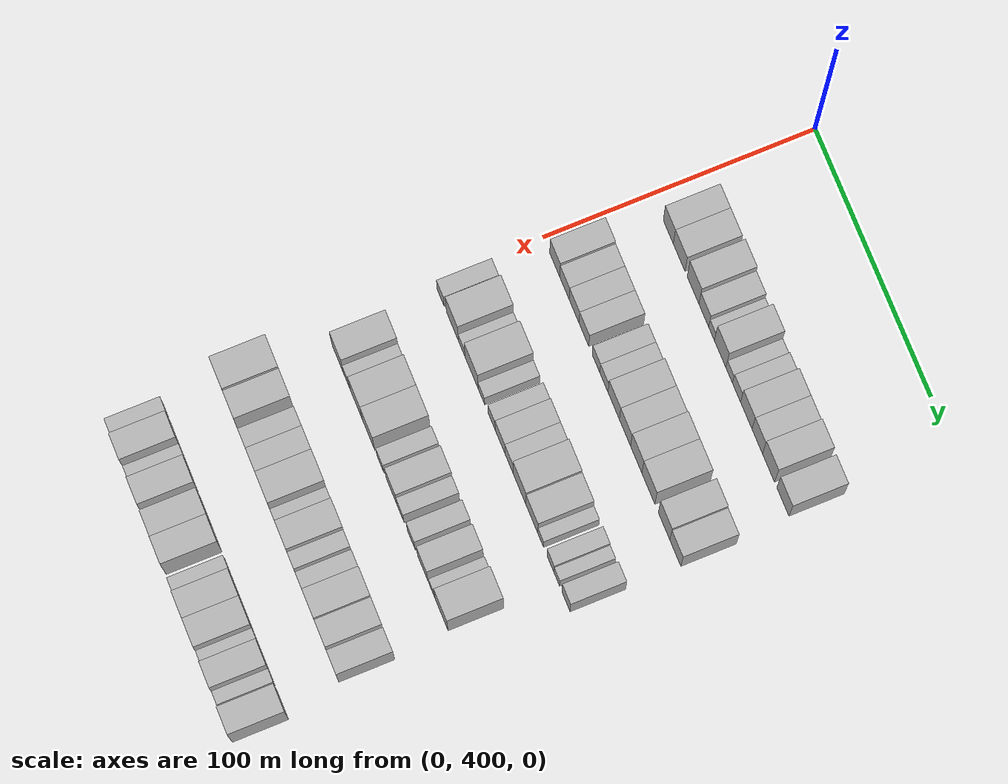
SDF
<sdf version="1.6">
 <world name="default">
  <model name="building_116">
   <static>1</static>
   <pose>50.0000 414.1596 0 0.000000 0.000000 0.000000</pose>
   <link name="link">
    <pose>0 0 10.50 0 0 0</pose>
    <collision name="collision"><geometry><box><size>20.0000 8.8745 21.0000</size></box></geometry></collision>
    <visual name="visual">
     <cast_shadows>0</cast_shadows>
     <geometry><box><size>20.0000 8.8745 21.0000</size></box></geometry>
     <material>
      <script>
       <uri>model://HANNAS_wall/materials/scripts</uri>
       <uri>model://HANNAS_wall/materials/textures</uri>
       <name>vrc/HANNAS_wall</name>
      </script>
     </material>
    </visual>
   </link>
  </model>
  <model name="building_117">
   <static>1</static>
   <pose>50.0000 423.7459 0 0.000000 0.000000 0.000000</pose>
   <link name="link">
    <pose>0 0 10.50 0 0 0</pose>
    <collision name="collision"><geometry><box><size>20.0000 10.2980 21.0000</size></box></geometry></collision>
    <visual name="visual">
     <cast_shadows>0</cast_shadows>
     <geometry><box><size>20.0000 10.2980 21.0000</size></box></geometry>
     <material>
      <script>
       <uri>model://HANNAS_wall/materials/scripts</uri>
       <uri>model://HANNAS_wall/materials/textures</uri>
       <name>vrc/HANNAS_wall</name>
      </script>
     </material>
    </visual>
   </link>
  </model>
  <model name="building_118">
   <static>1</static>
   <pose>50.0000 436.0245 0 0.000000 0.000000 0.000000</pose>
   <link name="link">
    <pose>0 0 12.00 0 0 0</pose>
    <collision name="collision"><geometry><box><size>20.0000 10.2592 24.0000</size></box></geometry></collision>
    <visual name="visual">
     <cast_shadows>0</cast_shadows>
     <geometry><box><size>20.0000 10.2592 24.0000</size></box></geometry>
     <material>
      <script>
       <uri>model://HANNAS_wall/materials/scripts</uri>
       <uri>model://HANNAS_wall/materials/textures</uri>
       <name>vrc/HANNAS_wall</name>
      </script>
     </material>
    </visual>
   </link>
  </model>
  <model name="building_119">
   <static>1</static>
   <pose>50.0000 445.4295 0 0.000000 0.000000 0.000000</pose>
   <link name="link">
    <pose>0 0 9.00 0 0 0</pose>
    <collision name="collision"><geometry><box><size>20.0000 8.5508 18.0000</size></box></geometry></collision>
    <visual name="visual">
     <cast_shadows>0</cast_shadows>
     <geometry><box><size>20.0000 8.5508 18.0000</size></box></geometry>
     <material>
      <script>
       <uri>model://HANNAS_wall/materials/scripts</uri>
       <uri>model://HANNAS_wall/materials/textures</uri>
       <name>vrc/HANNAS_wall</name>
      </script>
     </material>
    </visual>
   </link>
  </model>
  <model name="building_120">
   <static>1</static>
   <pose>50.0000 452.2341 0 0.000000 0.000000 0.000000</pose>
   <link name="link">
    <pose>0 0 6.00 0 0 0</pose>
    <collision name="collision"><geometry><box><size>20.0000 5.0583 12.0000</size></box></geometry></collision>
    <visual name="visual">
     <cast_shadows>0</cast_shadows>
     <geometry><box><size>20.0000 5.0583 12.0000</size></box></geometry>
     <material>
      <script>
       <uri>model://HANNAS_wall/materials/scripts</uri>
       <uri>model://HANNAS_wall/materials/textures</uri>
       <name>vrc/HANNAS_wall</name>
      </script>
     </material>
    </visual>
   </link>
  </model>
  <model name="building_121">
   <static>1</static>
   <pose>50.0000 459.7684 0 0.000000 0.000000 0.000000</pose>
   <link name="link">
    <pose>0 0 12.00 0 0 0</pose>
    <collision name="collision"><geometry><box><size>20.0000 10.0103 24.0000</size></box></geometry></collision>
    <visual name="visual">
     <cast_shadows>0</cast_shadows>
     <geometry><box><size>20.0000 10.0103 24.0000</size></box></geometry>
     <material>
      <script>
       <uri>model://HANNAS_wall/materials/scripts</uri>
       <uri>model://HANNAS_wall/materials/textures</uri>
       <name>vrc/HANNAS_wall</name>
      </script>
     </material>
    </visual>
   </link>
  </model>
  <model name="building_122">
   <static>1</static>
   <pose>50.0000 467.6586 0 0.000000 0.000000 0.000000</pose>
   <link name="link">
    <pose>0 0 6.00 0 0 0</pose>
    <collision name="collision"><geometry><box><size>20.0000 5.7701 12.0000</size></box></geometry></collision>
    <visual name="visual">
     <cast_shadows>0</cast_shadows>
     <geometry><box><size>20.0000 5.7701 12.0000</size></box></geometry>
     <material>
      <script>
       <uri>model://HANNAS_wall/materials/scripts</uri>
       <uri>model://HANNAS_wall/materials/textures</uri>
       <name>vrc/HANNAS_wall</name>
      </script>
     </material>
    </visual>
   </link>
  </model>
  <model name="building_123">
   <static>1</static>
   <pose>50.0000 474.0571 0 0.000000 0.000000 0.000000</pose>
   <link name="link">
    <pose>0 0 7.50 0 0 0</pose>
    <collision name="collision"><geometry><box><size>20.0000 7.0268 15.0000</size></box></geometry></collision>
    <visual name="visual">
     <cast_shadows>0</cast_shadows>
     <geometry><box><size>20.0000 7.0268 15.0000</size></box></geometry>
     <material>
      <script>
       <uri>model://HANNAS_wall/materials/scripts</uri>
       <uri>model://HANNAS_wall/materials/textures</uri>
       <name>vrc/HANNAS_wall</name>
      </script>
     </material>
    </visual>
   </link>
  </model>
  <model name="building_124">
   <static>1</static>
   <pose>50.0000 482.5332 0 0.000000 0.000000 0.000000</pose>
   <link name="link">
    <pose>0 0 10.50 0 0 0</pose>
    <collision name="collision"><geometry><box><size>20.0000 9.9253 21.0000</size></box></geometry></collision>
    <visual name="visual">
     <cast_shadows>0</cast_shadows>
     <geometry><box><size>20.0000 9.9253 21.0000</size></box></geometry>
     <material>
      <script>
       <uri>model://HANNAS_wall/materials/scripts</uri>
       <uri>model://HANNAS_wall/materials/textures</uri>
       <name>vrc/HANNAS_wall</name>
      </script>
     </material>
    </visual>
   </link>
  </model>
  <model name="building_125">
   <static>1</static>
   <pose>50.0000 492.0522 0 0.000000 0.000000 0.000000</pose>
   <link name="link">
    <pose>0 0 10.50 0 0 0</pose>
    <collision name="collision"><geometry><box><size>20.0000 9.1128 21.0000</size></box></geometry></collision>
    <visual name="visual">
     <cast_shadows>0</cast_shadows>
     <geometry><box><size>20.0000 9.1128 21.0000</size></box></geometry>
     <material>
      <script>
       <uri>model://HANNAS_wall/materials/scripts</uri>
       <uri>model://HANNAS_wall/materials/textures</uri>
       <name>vrc/HANNAS_wall</name>
      </script>
     </material>
    </visual>
   </link>
  </model>
  <model name="building_126">
   <static>1</static>
   <pose>50.0000 501.8090 0 0.000000 0.000000 0.000000</pose>
   <link name="link">
    <pose>0 0 12.00 0 0 0</pose>
    <collision name="collision"><geometry><box><size>20.0000 10.4008 24.0000</size></box></geometry></collision>
    <visual name="visual">
     <cast_shadows>0</cast_shadows>
     <geometry><box><size>20.0000 10.4008 24.0000</size></box></geometry>
     <material>
      <script>
       <uri>model://HANNAS_wall/materials/scripts</uri>
       <uri>model://HANNAS_wall/materials/textures</uri>
       <name>vrc/HANNAS_wall</name>
      </script>
     </material>
    </visual>
   </link>
  </model>
  <model name="building_127">
   <static>1</static>
   <pose>50.0000 514.2475 0 0.000000 0.000000 0.000000</pose>
   <link name="link">
    <pose>0 0 10.50 0 0 0</pose>
    <collision name="collision"><geometry><box><size>20.0000 10.4761 21.0000</size></box></geometry></collision>
    <visual name="visual">
     <cast_shadows>0</cast_shadows>
     <geometry><box><size>20.0000 10.4761 21.0000</size></box></geometry>
     <material>
      <script>
       <uri>model://HANNAS_wall/materials/scripts</uri>
       <uri>model://HANNAS_wall/materials/textures</uri>
       <name>vrc/HANNAS_wall</name>
      </script>
     </material>
    </visual>
   </link>
  </model>
  <model name="building_251">
   <static>1</static>
   <pose>90.0000 410.3472 0 0.000000 0.000000 0.000000</pose>
   <link name="link">
    <pose>0 0 10.50 0 0 0</pose>
    <collision name="collision"><geometry><box><size>20.0000 9.0230 21.0000</size></box></geometry></collision>
    <visual name="visual">
     <cast_shadows>0</cast_shadows>
     <geometry><box><size>20.0000 9.0230 21.0000</size></box></geometry>
     <material>
      <script>
       <uri>model://HANNAS_wall/materials/scripts</uri>
       <uri>model://HANNAS_wall/materials/textures</uri>
       <name>vrc/HANNAS_wall</name>
      </script>
     </material>
    </visual>
   </link>
  </model>
  <model name="building_252">
   <static>1</static>
   <pose>90.0000 418.9887 0 0.000000 0.000000 0.000000</pose>
   <link name="link">
    <pose>0 0 9.00 0 0 0</pose>
    <collision name="collision"><geometry><box><size>20.0000 8.2601 18.0000</size></box></geometry></collision>
    <visual name="visual">
     <cast_shadows>0</cast_shadows>
     <geometry><box><size>20.0000 8.2601 18.0000</size></box></geometry>
     <material>
      <script>
       <uri>model://HANNAS_wall/materials/scripts</uri>
       <uri>model://HANNAS_wall/materials/textures</uri>
       <name>vrc/HANNAS_wall</name>
      </script>
     </material>
    </visual>
   </link>
  </model>
  <model name="building_253">
   <static>1</static>
   <pose>90.0000 427.5432 0 0.000000 0.000000 0.000000</pose>
   <link name="link">
    <pose>0 0 9.00 0 0 0</pose>
    <collision name="collision"><geometry><box><size>20.0000 8.8490 18.0000</size></box></geometry></collision>
    <visual name="visual">
     <cast_shadows>0</cast_shadows>
     <geometry><box><size>20.0000 8.8490 18.0000</size></box></geometry>
     <material>
      <script>
       <uri>model://HANNAS_wall/materials/scripts</uri>
       <uri>model://HANNAS_wall/materials/textures</uri>
       <name>vrc/HANNAS_wall</name>
      </script>
     </material>
    </visual>
   </link>
  </model>
  <model name="building_254">
   <static>1</static>
   <pose>90.0000 436.2854 0 0.000000 0.000000 0.000000</pose>
   <link name="link">
    <pose>0 0 9.00 0 0 0</pose>
    <collision name="collision"><geometry><box><size>20.0000 8.6353 18.0000</size></box></geometry></collision>
    <visual name="visual">
     <cast_shadows>0</cast_shadows>
     <geometry><box><size>20.0000 8.6353 18.0000</size></box></geometry>
     <material>
      <script>
       <uri>model://HANNAS_wall/materials/scripts</uri>
       <uri>model://HANNAS_wall/materials/textures</uri>
       <name>vrc/HANNAS_wall</name>
      </script>
     </material>
    </visual>
   </link>
  </model>
  <model name="building_255">
   <static>1</static>
   <pose>90.0000 446.9919 0 0.000000 0.000000 0.000000</pose>
   <link name="link">
    <pose>0 0 7.50 0 0 0</pose>
    <collision name="collision"><geometry><box><size>20.0000 6.7778 15.0000</size></box></geometry></collision>
    <visual name="visual">
     <cast_shadows>0</cast_shadows>
     <geometry><box><size>20.0000 6.7778 15.0000</size></box></geometry>
     <material>
      <script>
       <uri>model://HANNAS_wall/materials/scripts</uri>
       <uri>model://HANNAS_wall/materials/textures</uri>
       <name>vrc/HANNAS_wall</name>
      </script>
     </material>
    </visual>
   </link>
  </model>
  <model name="building_256">
   <static>1</static>
   <pose>90.0000 454.0226 0 0.000000 0.000000 0.000000</pose>
   <link name="link">
    <pose>0 0 7.50 0 0 0</pose>
    <collision name="collision"><geometry><box><size>20.0000 7.2835 15.0000</size></box></geometry></collision>
    <visual name="visual">
     <cast_shadows>0</cast_shadows>
     <geometry><box><size>20.0000 7.2835 15.0000</size></box></geometry>
     <material>
      <script>
       <uri>model://HANNAS_wall/materials/scripts</uri>
       <uri>model://HANNAS_wall/materials/textures</uri>
       <name>vrc/HANNAS_wall</name>
      </script>
     </material>
    </visual>
   </link>
  </model>
  <model name="building_257">
   <static>1</static>
   <pose>90.0000 462.6688 0 0.000000 0.000000 0.000000</pose>
   <link name="link">
    <pose>0 0 10.50 0 0 0</pose>
    <collision name="collision"><geometry><box><size>20.0000 10.0088 21.0000</size></box></geometry></collision>
    <visual name="visual">
     <cast_shadows>0</cast_shadows>
     <geometry><box><size>20.0000 10.0088 21.0000</size></box></geometry>
     <material>
      <script>
       <uri>model://HANNAS_wall/materials/scripts</uri>
       <uri>model://HANNAS_wall/materials/textures</uri>
       <name>vrc/HANNAS_wall</name>
      </script>
     </material>
    </visual>
   </link>
  </model>
  <model name="building_258">
   <static>1</static>
   <pose>90.0000 472.6251 0 0.000000 0.000000 0.000000</pose>
   <link name="link">
    <pose>0 0 10.50 0 0 0</pose>
    <collision name="collision"><geometry><box><size>20.0000 9.9038 21.0000</size></box></geometry></collision>
    <visual name="visual">
     <cast_shadows>0</cast_shadows>
     <geometry><box><size>20.0000 9.9038 21.0000</size></box></geometry>
     <material>
      <script>
       <uri>model://HANNAS_wall/materials/scripts</uri>
       <uri>model://HANNAS_wall/materials/textures</uri>
       <name>vrc/HANNAS_wall</name>
      </script>
     </material>
    </visual>
   </link>
  </model>
  <model name="building_259">
   <static>1</static>
   <pose>90.0000 482.5399 0 0.000000 0.000000 0.000000</pose>
   <link name="link">
    <pose>0 0 12.00 0 0 0</pose>
    <collision name="collision"><geometry><box><size>20.0000 9.9258 24.0000</size></box></geometry></collision>
    <visual name="visual">
     <cast_shadows>0</cast_shadows>
     <geometry><box><size>20.0000 9.9258 24.0000</size></box></geometry>
     <material>
      <script>
       <uri>model://HANNAS_wall/materials/scripts</uri>
       <uri>model://HANNAS_wall/materials/textures</uri>
       <name>vrc/HANNAS_wall</name>
      </script>
     </material>
    </visual>
   </link>
  </model>
  <model name="building_260">
   <static>1</static>
   <pose>90.0000 493.1883 0 0.000000 0.000000 0.000000</pose>
   <link name="link">
    <pose>0 0 12.00 0 0 0</pose>
    <collision name="collision"><geometry><box><size>20.0000 11.3711 24.0000</size></box></geometry></collision>
    <visual name="visual">
     <cast_shadows>0</cast_shadows>
     <geometry><box><size>20.0000 11.3711 24.0000</size></box></geometry>
     <material>
      <script>
       <uri>model://HANNAS_wall/materials/scripts</uri>
       <uri>model://HANNAS_wall/materials/textures</uri>
       <name>vrc/HANNAS_wall</name>
      </script>
     </material>
    </visual>
   </link>
  </model>
  <model name="building_261">
   <static>1</static>
   <pose>90.0000 506.8985 0 0.000000 0.000000 0.000000</pose>
   <link name="link">
    <pose>0 0 12.00 0 0 0</pose>
    <collision name="collision"><geometry><box><size>20.0000 10.0492 24.0000</size></box></geometry></collision>
    <visual name="visual">
     <cast_shadows>0</cast_shadows>
     <geometry><box><size>20.0000 10.0492 24.0000</size></box></geometry>
     <material>
      <script>
       <uri>model://HANNAS_wall/materials/scripts</uri>
       <uri>model://HANNAS_wall/materials/textures</uri>
       <name>vrc/HANNAS_wall</name>
      </script>
     </material>
    </visual>
   </link>
  </model>
  <model name="building_262">
   <static>1</static>
   <pose>90.0000 516.7127 0 0.000000 0.000000 0.000000</pose>
   <link name="link">
    <pose>0 0 10.50 0 0 0</pose>
    <collision name="collision"><geometry><box><size>20.0000 9.5792 21.0000</size></box></geometry></collision>
    <visual name="visual">
     <cast_shadows>0</cast_shadows>
     <geometry><box><size>20.0000 9.5792 21.0000</size></box></geometry>
     <material>
      <script>
       <uri>model://HANNAS_wall/materials/scripts</uri>
       <uri>model://HANNAS_wall/materials/textures</uri>
       <name>vrc/HANNAS_wall</name>
      </script>
     </material>
    </visual>
   </link>
  </model>
  <model name="building_388">
   <static>1</static>
   <pose>130.0000 406.3411 0 0.000000 0.000000 0.000000</pose>
   <link name="link">
    <pose>0 0 7.50 0 0 0</pose>
    <collision name="collision"><geometry><box><size>20.0000 6.3000 15.0000</size></box></geometry></collision>
    <visual name="visual">
     <cast_shadows>0</cast_shadows>
     <geometry><box><size>20.0000 6.3000 15.0000</size></box></geometry>
     <material>
      <script>
       <uri>model://HANNAS_wall/materials/scripts</uri>
       <uri>model://HANNAS_wall/materials/textures</uri>
       <name>vrc/HANNAS_wall</name>
      </script>
     </material>
    </visual>
   </link>
  </model>
  <model name="building_389">
   <static>1</static>
   <pose>130.0000 416.9704 0 0.000000 0.000000 0.000000</pose>
   <link name="link">
    <pose>0 0 12.00 0 0 0</pose>
    <collision name="collision"><geometry><box><size>20.0000 10.9587 24.0000</size></box></geometry></collision>
    <visual name="visual">
     <cast_shadows>0</cast_shadows>
     <geometry><box><size>20.0000 10.9587 24.0000</size></box></geometry>
     <material>
      <script>
       <uri>model://HANNAS_wall/materials/scripts</uri>
       <uri>model://HANNAS_wall/materials/textures</uri>
       <name>vrc/HANNAS_wall</name>
      </script>
     </material>
    </visual>
   </link>
  </model>
  <model name="building_390">
   <static>1</static>
   <pose>130.0000 425.3771 0 0.000000 0.000000 0.000000</pose>
   <link name="link">
    <pose>0 0 6.00 0 0 0</pose>
    <collision name="collision"><geometry><box><size>20.0000 5.8548 12.0000</size></box></geometry></collision>
    <visual name="visual">
     <cast_shadows>0</cast_shadows>
     <geometry><box><size>20.0000 5.8548 12.0000</size></box></geometry>
     <material>
      <script>
       <uri>model://HANNAS_wall/materials/scripts</uri>
       <uri>model://HANNAS_wall/materials/textures</uri>
       <name>vrc/HANNAS_wall</name>
      </script>
     </material>
    </visual>
   </link>
  </model>
  <model name="building_391">
   <static>1</static>
   <pose>130.0000 434.2310 0 0.000000 0.000000 0.000000</pose>
   <link name="link">
    <pose>0 0 12.00 0 0 0</pose>
    <collision name="collision"><geometry><box><size>20.0000 11.8530 24.0000</size></box></geometry></collision>
    <visual name="visual">
     <cast_shadows>0</cast_shadows>
     <geometry><box><size>20.0000 11.8530 24.0000</size></box></geometry>
     <material>
      <script>
       <uri>model://HANNAS_wall/materials/scripts</uri>
       <uri>model://HANNAS_wall/materials/textures</uri>
       <name>vrc/HANNAS_wall</name>
      </script>
     </material>
    </visual>
   </link>
  </model>
  <model name="building_392">
   <static>1</static>
   <pose>130.0000 443.0750 0 0.000000 0.000000 0.000000</pose>
   <link name="link">
    <pose>0 0 6.00 0 0 0</pose>
    <collision name="collision"><geometry><box><size>20.0000 5.8350 12.0000</size></box></geometry></collision>
    <visual name="visual">
     <cast_shadows>0</cast_shadows>
     <geometry><box><size>20.0000 5.8350 12.0000</size></box></geometry>
     <material>
      <script>
       <uri>model://HANNAS_wall/materials/scripts</uri>
       <uri>model://HANNAS_wall/materials/textures</uri>
       <name>vrc/HANNAS_wall</name>
      </script>
     </material>
    </visual>
   </link>
  </model>
  <model name="building_393">
   <static>1</static>
   <pose>130.0000 452.1906 0 0.000000 0.000000 0.000000</pose>
   <link name="link">
    <pose>0 0 7.50 0 0 0</pose>
    <collision name="collision"><geometry><box><size>20.0000 6.3962 15.0000</size></box></geometry></collision>
    <visual name="visual">
     <cast_shadows>0</cast_shadows>
     <geometry><box><size>20.0000 6.3962 15.0000</size></box></geometry>
     <material>
      <script>
       <uri>model://HANNAS_wall/materials/scripts</uri>
       <uri>model://HANNAS_wall/materials/textures</uri>
       <name>vrc/HANNAS_wall</name>
      </script>
     </material>
    </visual>
   </link>
  </model>
  <model name="building_394">
   <static>1</static>
   <pose>130.0000 459.7161 0 0.000000 0.000000 0.000000</pose>
   <link name="link">
    <pose>0 0 9.00 0 0 0</pose>
    <collision name="collision"><geometry><box><size>20.0000 8.6547 18.0000</size></box></geometry></collision>
    <visual name="visual">
     <cast_shadows>0</cast_shadows>
     <geometry><box><size>20.0000 8.6547 18.0000</size></box></geometry>
     <material>
      <script>
       <uri>model://HANNAS_wall/materials/scripts</uri>
       <uri>model://HANNAS_wall/materials/textures</uri>
       <name>vrc/HANNAS_wall</name>
      </script>
     </material>
    </visual>
   </link>
  </model>
  <model name="building_395">
   <static>1</static>
   <pose>130.0000 467.6777 0 0.000000 0.000000 0.000000</pose>
   <link name="link">
    <pose>0 0 9.00 0 0 0</pose>
    <collision name="collision"><geometry><box><size>20.0000 7.2686 18.0000</size></box></geometry></collision>
    <visual name="visual">
     <cast_shadows>0</cast_shadows>
     <geometry><box><size>20.0000 7.2686 18.0000</size></box></geometry>
     <material>
      <script>
       <uri>model://HANNAS_wall/materials/scripts</uri>
       <uri>model://HANNAS_wall/materials/textures</uri>
       <name>vrc/HANNAS_wall</name>
      </script>
     </material>
    </visual>
   </link>
  </model>
  <model name="building_396">
   <static>1</static>
   <pose>130.0000 477.0628 0 0.000000 0.000000 0.000000</pose>
   <link name="link">
    <pose>0 0 12.00 0 0 0</pose>
    <collision name="collision"><geometry><box><size>20.0000 11.5015 24.0000</size></box></geometry></collision>
    <visual name="visual">
     <cast_shadows>0</cast_shadows>
     <geometry><box><size>20.0000 11.5015 24.0000</size></box></geometry>
     <material>
      <script>
       <uri>model://HANNAS_wall/materials/scripts</uri>
       <uri>model://HANNAS_wall/materials/textures</uri>
       <name>vrc/HANNAS_wall</name>
      </script>
     </material>
    </visual>
   </link>
  </model>
  <model name="building_397">
   <static>1</static>
   <pose>130.0000 488.0624 0 0.000000 0.000000 0.000000</pose>
   <link name="link">
    <pose>0 0 10.50 0 0 0</pose>
    <collision name="collision"><geometry><box><size>20.0000 10.4977 21.0000</size></box></geometry></collision>
    <visual name="visual">
     <cast_shadows>0</cast_shadows>
     <geometry><box><size>20.0000 10.4977 21.0000</size></box></geometry>
     <material>
      <script>
       <uri>model://HANNAS_wall/materials/scripts</uri>
       <uri>model://HANNAS_wall/materials/textures</uri>
       <name>vrc/HANNAS_wall</name>
      </script>
     </material>
    </visual>
   </link>
  </model>
  <model name="building_398">
   <static>1</static>
   <pose>130.0000 495.7977 0 0.000000 0.000000 0.000000</pose>
   <link name="link">
    <pose>0 0 6.00 0 0 0</pose>
    <collision name="collision"><geometry><box><size>20.0000 4.9730 12.0000</size></box></geometry></collision>
    <visual name="visual">
     <cast_shadows>0</cast_shadows>
     <geometry><box><size>20.0000 4.9730 12.0000</size></box></geometry>
     <material>
      <script>
       <uri>model://HANNAS_wall/materials/scripts</uri>
       <uri>model://HANNAS_wall/materials/textures</uri>
       <name>vrc/HANNAS_wall</name>
      </script>
     </material>
    </visual>
   </link>
  </model>
  <model name="building_399">
   <static>1</static>
   <pose>130.0000 504.4162 0 0.000000 0.000000 0.000000</pose>
   <link name="link">
    <pose>0 0 7.50 0 0 0</pose>
    <collision name="collision"><geometry><box><size>20.0000 6.2638 15.0000</size></box></geometry></collision>
    <visual name="visual">
     <cast_shadows>0</cast_shadows>
     <geometry><box><size>20.0000 6.2638 15.0000</size></box></geometry>
     <material>
      <script>
       <uri>model://HANNAS_wall/materials/scripts</uri>
       <uri>model://HANNAS_wall/materials/textures</uri>
       <name>vrc/HANNAS_wall</name>
      </script>
     </material>
    </visual>
   </link>
  </model>
  <model name="building_400">
   <static>1</static>
   <pose>130.0000 509.9832 0 0.000000 0.000000 0.000000</pose>
   <link name="link">
    <pose>0 0 6.00 0 0 0</pose>
    <collision name="collision"><geometry><box><size>20.0000 4.8703 12.0000</size></box></geometry></collision>
    <visual name="visual">
     <cast_shadows>0</cast_shadows>
     <geometry><box><size>20.0000 4.8703 12.0000</size></box></geometry>
     <material>
      <script>
       <uri>model://HANNAS_wall/materials/scripts</uri>
       <uri>model://HANNAS_wall/materials/textures</uri>
       <name>vrc/HANNAS_wall</name>
      </script>
     </material>
    </visual>
   </link>
  </model>
  <model name="building_401">
   <static>1</static>
   <pose>130.0000 518.0555 0 0.000000 0.000000 0.000000</pose>
   <link name="link">
    <pose>0 0 9.00 0 0 0</pose>
    <collision name="collision"><geometry><box><size>20.0000 7.2743 18.0000</size></box></geometry></collision>
    <visual name="visual">
     <cast_shadows>0</cast_shadows>
     <geometry><box><size>20.0000 7.2743 18.0000</size></box></geometry>
     <material>
      <script>
       <uri>model://HANNAS_wall/materials/scripts</uri>
       <uri>model://HANNAS_wall/materials/textures</uri>
       <name>vrc/HANNAS_wall</name>
      </script>
     </material>
    </visual>
   </link>
  </model>
  <model name="building_518">
   <static>1</static>
   <pose>170.0000 413.1798 0 0.000000 0.000000 0.000000</pose>
   <link name="link">
    <pose>0 0 12.00 0 0 0</pose>
    <collision name="collision"><geometry><box><size>20.0000 10.3404 24.0000</size></box></geometry></collision>
    <visual name="visual">
     <cast_shadows>0</cast_shadows>
     <geometry><box><size>20.0000 10.3404 24.0000</size></box></geometry>
     <material>
      <script>
       <uri>model://HANNAS_wall/materials/scripts</uri>
       <uri>model://HANNAS_wall/materials/textures</uri>
       <name>vrc/HANNAS_wall</name>
      </script>
     </material>
    </visual>
   </link>
  </model>
  <model name="building_519">
   <static>1</static>
   <pose>170.0000 421.3581 0 0.000000 0.000000 0.000000</pose>
   <link name="link">
    <pose>0 0 7.50 0 0 0</pose>
    <collision name="collision"><geometry><box><size>20.0000 6.0162 15.0000</size></box></geometry></collision>
    <visual name="visual">
     <cast_shadows>0</cast_shadows>
     <geometry><box><size>20.0000 6.0162 15.0000</size></box></geometry>
     <material>
      <script>
       <uri>model://HANNAS_wall/materials/scripts</uri>
       <uri>model://HANNAS_wall/materials/textures</uri>
       <name>vrc/HANNAS_wall</name>
      </script>
     </material>
    </visual>
   </link>
  </model>
  <model name="building_520">
   <static>1</static>
   <pose>170.0000 429.8878 0 0.000000 0.000000 0.000000</pose>
   <link name="link">
    <pose>0 0 12.00 0 0 0</pose>
    <collision name="collision"><geometry><box><size>20.0000 11.0432 24.0000</size></box></geometry></collision>
    <visual name="visual">
     <cast_shadows>0</cast_shadows>
     <geometry><box><size>20.0000 11.0432 24.0000</size></box></geometry>
     <material>
      <script>
       <uri>model://HANNAS_wall/materials/scripts</uri>
       <uri>model://HANNAS_wall/materials/textures</uri>
       <name>vrc/HANNAS_wall</name>
      </script>
     </material>
    </visual>
   </link>
  </model>
  <model name="building_521">
   <static>1</static>
   <pose>170.0000 440.9797 0 0.000000 0.000000 0.000000</pose>
   <link name="link">
    <pose>0 0 12.00 0 0 0</pose>
    <collision name="collision"><geometry><box><size>20.0000 11.1406 24.0000</size></box></geometry></collision>
    <visual name="visual">
     <cast_shadows>0</cast_shadows>
     <geometry><box><size>20.0000 11.1406 24.0000</size></box></geometry>
     <material>
      <script>
       <uri>model://HANNAS_wall/materials/scripts</uri>
       <uri>model://HANNAS_wall/materials/textures</uri>
       <name>vrc/HANNAS_wall</name>
      </script>
     </material>
    </visual>
   </link>
  </model>
  <model name="building_522">
   <static>1</static>
   <pose>170.0000 451.7085 0 0.000000 0.000000 0.000000</pose>
   <link name="link">
    <pose>0 0 7.50 0 0 0</pose>
    <collision name="collision"><geometry><box><size>20.0000 6.3171 15.0000</size></box></geometry></collision>
    <visual name="visual">
     <cast_shadows>0</cast_shadows>
     <geometry><box><size>20.0000 6.3171 15.0000</size></box></geometry>
     <material>
      <script>
       <uri>model://HANNAS_wall/materials/scripts</uri>
       <uri>model://HANNAS_wall/materials/textures</uri>
       <name>vrc/HANNAS_wall</name>
      </script>
     </material>
    </visual>
   </link>
  </model>
  <model name="building_523">
   <static>1</static>
   <pose>170.0000 461.7268 0 0.000000 0.000000 0.000000</pose>
   <link name="link">
    <pose>0 0 10.50 0 0 0</pose>
    <collision name="collision"><geometry><box><size>20.0000 9.7196 21.0000</size></box></geometry></collision>
    <visual name="visual">
     <cast_shadows>0</cast_shadows>
     <geometry><box><size>20.0000 9.7196 21.0000</size></box></geometry>
     <material>
      <script>
       <uri>model://HANNAS_wall/materials/scripts</uri>
       <uri>model://HANNAS_wall/materials/textures</uri>
       <name>vrc/HANNAS_wall</name>
      </script>
     </material>
    </visual>
   </link>
  </model>
  <model name="building_524">
   <static>1</static>
   <pose>170.0000 469.7466 0 0.000000 0.000000 0.000000</pose>
   <link name="link">
    <pose>0 0 7.50 0 0 0</pose>
    <collision name="collision"><geometry><box><size>20.0000 6.3200 15.0000</size></box></geometry></collision>
    <visual name="visual">
     <cast_shadows>0</cast_shadows>
     <geometry><box><size>20.0000 6.3200 15.0000</size></box></geometry>
     <material>
      <script>
       <uri>model://HANNAS_wall/materials/scripts</uri>
       <uri>model://HANNAS_wall/materials/textures</uri>
       <name>vrc/HANNAS_wall</name>
      </script>
     </material>
    </visual>
   </link>
  </model>
  <model name="building_525">
   <static>1</static>
   <pose>170.0000 479.5081 0 0.000000 0.000000 0.000000</pose>
   <link name="link">
    <pose>0 0 9.00 0 0 0</pose>
    <collision name="collision"><geometry><box><size>20.0000 7.2029 18.0000</size></box></geometry></collision>
    <visual name="visual">
     <cast_shadows>0</cast_shadows>
     <geometry><box><size>20.0000 7.2029 18.0000</size></box></geometry>
     <material>
      <script>
       <uri>model://HANNAS_wall/materials/scripts</uri>
       <uri>model://HANNAS_wall/materials/textures</uri>
       <name>vrc/HANNAS_wall</name>
      </script>
     </material>
    </visual>
   </link>
  </model>
  <model name="building_526">
   <static>1</static>
   <pose>170.0000 489.7148 0 0.000000 0.000000 0.000000</pose>
   <link name="link">
    <pose>0 0 10.50 0 0 0</pose>
    <collision name="collision"><geometry><box><size>20.0000 9.2106 21.0000</size></box></geometry></collision>
    <visual name="visual">
     <cast_shadows>0</cast_shadows>
     <geometry><box><size>20.0000 9.2106 21.0000</size></box></geometry>
     <material>
      <script>
       <uri>model://HANNAS_wall/materials/scripts</uri>
       <uri>model://HANNAS_wall/materials/textures</uri>
       <name>vrc/HANNAS_wall</name>
      </script>
     </material>
    </visual>
   </link>
  </model>
  <model name="building_527">
   <static>1</static>
   <pose>170.0000 498.0252 0 0.000000 0.000000 0.000000</pose>
   <link name="link">
    <pose>0 0 6.00 0 0 0</pose>
    <collision name="collision"><geometry><box><size>20.0000 5.4101 12.0000</size></box></geometry></collision>
    <visual name="visual">
     <cast_shadows>0</cast_shadows>
     <geometry><box><size>20.0000 5.4101 12.0000</size></box></geometry>
     <material>
      <script>
       <uri>model://HANNAS_wall/materials/scripts</uri>
       <uri>model://HANNAS_wall/materials/textures</uri>
       <name>vrc/HANNAS_wall</name>
      </script>
     </material>
    </visual>
   </link>
  </model>
  <model name="building_528">
   <static>1</static>
   <pose>170.0000 506.4964 0 0.000000 0.000000 0.000000</pose>
   <link name="link">
    <pose>0 0 12.00 0 0 0</pose>
    <collision name="collision"><geometry><box><size>20.0000 11.5324 24.0000</size></box></geometry></collision>
    <visual name="visual">
     <cast_shadows>0</cast_shadows>
     <geometry><box><size>20.0000 11.5324 24.0000</size></box></geometry>
     <material>
      <script>
       <uri>model://HANNAS_wall/materials/scripts</uri>
       <uri>model://HANNAS_wall/materials/textures</uri>
       <name>vrc/HANNAS_wall</name>
      </script>
     </material>
    </visual>
   </link>
  </model>
  <model name="building_662">
   <static>1</static>
   <pose>210.0000 406.5577 0 0.000000 0.000000 0.000000</pose>
   <link name="link">
    <pose>0 0 12.00 0 0 0</pose>
    <collision name="collision"><geometry><box><size>20.0000 11.7483 24.0000</size></box></geometry></collision>
    <visual name="visual">
     <cast_shadows>0</cast_shadows>
     <geometry><box><size>20.0000 11.7483 24.0000</size></box></geometry>
     <material>
      <script>
       <uri>model://HANNAS_wall/materials/scripts</uri>
       <uri>model://HANNAS_wall/materials/textures</uri>
       <name>vrc/HANNAS_wall</name>
      </script>
     </material>
    </visual>
   </link>
  </model>
  <model name="building_663">
   <static>1</static>
   <pose>210.0000 417.5318 0 0.000000 0.000000 0.000000</pose>
   <link name="link">
    <pose>0 0 10.50 0 0 0</pose>
    <collision name="collision"><geometry><box><size>20.0000 10.1999 21.0000</size></box></geometry></collision>
    <visual name="visual">
     <cast_shadows>0</cast_shadows>
     <geometry><box><size>20.0000 10.1999 21.0000</size></box></geometry>
     <material>
      <script>
       <uri>model://HANNAS_wall/materials/scripts</uri>
       <uri>model://HANNAS_wall/materials/textures</uri>
       <name>vrc/HANNAS_wall</name>
      </script>
     </material>
    </visual>
   </link>
  </model>
  <model name="building_664">
   <static>1</static>
   <pose>210.0000 429.4336 0 0.000000 0.000000 0.000000</pose>
   <link name="link">
    <pose>0 0 9.00 0 0 0</pose>
    <collision name="collision"><geometry><box><size>20.0000 7.6037 18.0000</size></box></geometry></collision>
    <visual name="visual">
     <cast_shadows>0</cast_shadows>
     <geometry><box><size>20.0000 7.6037 18.0000</size></box></geometry>
     <material>
      <script>
       <uri>model://HANNAS_wall/materials/scripts</uri>
       <uri>model://HANNAS_wall/materials/textures</uri>
       <name>vrc/HANNAS_wall</name>
      </script>
     </material>
    </visual>
   </link>
  </model>
  <model name="building_665">
   <static>1</static>
   <pose>210.0000 437.7683 0 0.000000 0.000000 0.000000</pose>
   <link name="link">
    <pose>0 0 10.50 0 0 0</pose>
    <collision name="collision"><geometry><box><size>20.0000 9.0658 21.0000</size></box></geometry></collision>
    <visual name="visual">
     <cast_shadows>0</cast_shadows>
     <geometry><box><size>20.0000 9.0658 21.0000</size></box></geometry>
     <material>
      <script>
       <uri>model://HANNAS_wall/materials/scripts</uri>
       <uri>model://HANNAS_wall/materials/textures</uri>
       <name>vrc/HANNAS_wall</name>
      </script>
     </material>
    </visual>
   </link>
  </model>
  <model name="building_666">
   <static>1</static>
   <pose>210.0000 448.0135 0 0.000000 0.000000 0.000000</pose>
   <link name="link">
    <pose>0 0 12.00 0 0 0</pose>
    <collision name="collision"><geometry><box><size>20.0000 11.4246 24.0000</size></box></geometry></collision>
    <visual name="visual">
     <cast_shadows>0</cast_shadows>
     <geometry><box><size>20.0000 11.4246 24.0000</size></box></geometry>
     <material>
      <script>
       <uri>model://HANNAS_wall/materials/scripts</uri>
       <uri>model://HANNAS_wall/materials/textures</uri>
       <name>vrc/HANNAS_wall</name>
      </script>
     </material>
    </visual>
   </link>
  </model>
  <model name="building_667">
   <static>1</static>
   <pose>210.0000 456.5707 0 0.000000 0.000000 0.000000</pose>
   <link name="link">
    <pose>0 0 6.00 0 0 0</pose>
    <collision name="collision"><geometry><box><size>20.0000 5.6897 12.0000</size></box></geometry></collision>
    <visual name="visual">
     <cast_shadows>0</cast_shadows>
     <geometry><box><size>20.0000 5.6897 12.0000</size></box></geometry>
     <material>
      <script>
       <uri>model://HANNAS_wall/materials/scripts</uri>
       <uri>model://HANNAS_wall/materials/textures</uri>
       <name>vrc/HANNAS_wall</name>
      </script>
     </material>
    </visual>
   </link>
  </model>
  <model name="building_668">
   <static>1</static>
   <pose>210.0000 464.6201 0 0.000000 0.000000 0.000000</pose>
   <link name="link">
    <pose>0 0 10.50 0 0 0</pose>
    <collision name="collision"><geometry><box><size>20.0000 10.4092 21.0000</size></box></geometry></collision>
    <visual name="visual">
     <cast_shadows>0</cast_shadows>
     <geometry><box><size>20.0000 10.4092 21.0000</size></box></geometry>
     <material>
      <script>
       <uri>model://HANNAS_wall/materials/scripts</uri>
       <uri>model://HANNAS_wall/materials/textures</uri>
       <name>vrc/HANNAS_wall</name>
      </script>
     </material>
    </visual>
   </link>
  </model>
  <model name="building_669">
   <static>1</static>
   <pose>210.0000 472.8944 0 0.000000 0.000000 0.000000</pose>
   <link name="link">
    <pose>0 0 7.50 0 0 0</pose>
    <collision name="collision"><geometry><box><size>20.0000 6.1394 15.0000</size></box></geometry></collision>
    <visual name="visual">
     <cast_shadows>0</cast_shadows>
     <geometry><box><size>20.0000 6.1394 15.0000</size></box></geometry>
     <material>
      <script>
       <uri>model://HANNAS_wall/materials/scripts</uri>
       <uri>model://HANNAS_wall/materials/textures</uri>
       <name>vrc/HANNAS_wall</name>
      </script>
     </material>
    </visual>
   </link>
  </model>
  <model name="building_670">
   <static>1</static>
   <pose>210.0000 480.6763 0 0.000000 0.000000 0.000000</pose>
   <link name="link">
    <pose>0 0 7.50 0 0 0</pose>
    <collision name="collision"><geometry><box><size>20.0000 7.4245 15.0000</size></box></geometry></collision>
    <visual name="visual">
     <cast_shadows>0</cast_shadows>
     <geometry><box><size>20.0000 7.4245 15.0000</size></box></geometry>
     <material>
      <script>
       <uri>model://HANNAS_wall/materials/scripts</uri>
       <uri>model://HANNAS_wall/materials/textures</uri>
       <name>vrc/HANNAS_wall</name>
      </script>
     </material>
    </visual>
   </link>
  </model>
  <model name="building_671">
   <static>1</static>
   <pose>210.0000 489.6611 0 0.000000 0.000000 0.000000</pose>
   <link name="link">
    <pose>0 0 12.00 0 0 0</pose>
    <collision name="collision"><geometry><box><size>20.0000 10.5452 24.0000</size></box></geometry></collision>
    <visual name="visual">
     <cast_shadows>0</cast_shadows>
     <geometry><box><size>20.0000 10.5452 24.0000</size></box></geometry>
     <material>
      <script>
       <uri>model://HANNAS_wall/materials/scripts</uri>
       <uri>model://HANNAS_wall/materials/textures</uri>
       <name>vrc/HANNAS_wall</name>
      </script>
     </material>
    </visual>
   </link>
  </model>
  <model name="building_672">
   <static>1</static>
   <pose>210.0000 499.8557 0 0.000000 0.000000 0.000000</pose>
   <link name="link">
    <pose>0 0 10.50 0 0 0</pose>
    <collision name="collision"><geometry><box><size>20.0000 9.8439 21.0000</size></box></geometry></collision>
    <visual name="visual">
     <cast_shadows>0</cast_shadows>
     <geometry><box><size>20.0000 9.8439 21.0000</size></box></geometry>
     <material>
      <script>
       <uri>model://HANNAS_wall/materials/scripts</uri>
       <uri>model://HANNAS_wall/materials/textures</uri>
       <name>vrc/HANNAS_wall</name>
      </script>
     </material>
    </visual>
   </link>
  </model>
  <model name="building_673">
   <static>1</static>
   <pose>210.0000 510.1615 0 0.000000 0.000000 0.000000</pose>
   <link name="link">
    <pose>0 0 10.50 0 0 0</pose>
    <collision name="collision"><geometry><box><size>20.0000 8.7679 21.0000</size></box></geometry></collision>
    <visual name="visual">
     <cast_shadows>0</cast_shadows>
     <geometry><box><size>20.0000 8.7679 21.0000</size></box></geometry>
     <material>
      <script>
       <uri>model://HANNAS_wall/materials/scripts</uri>
       <uri>model://HANNAS_wall/materials/textures</uri>
       <name>vrc/HANNAS_wall</name>
      </script>
     </material>
    </visual>
   </link>
  </model>
  <model name="building_787">
   <static>1</static>
   <pose>250.0000 407.3467 0 0.000000 0.000000 0.000000</pose>
   <link name="link">
    <pose>0 0 6.00 0 0 0</pose>
    <collision name="collision"><geometry><box><size>20.0000 5.6029 12.0000</size></box></geometry></collision>
    <visual name="visual">
     <cast_shadows>0</cast_shadows>
     <geometry><box><size>20.0000 5.6029 12.0000</size></box></geometry>
     <material>
      <script>
       <uri>model://HANNAS_wall/materials/scripts</uri>
       <uri>model://HANNAS_wall/materials/textures</uri>
       <name>vrc/HANNAS_wall</name>
      </script>
     </material>
    </visual>
   </link>
  </model>
  <model name="building_788">
   <static>1</static>
   <pose>250.0000 416.9522 0 0.000000 0.000000 0.000000</pose>
   <link name="link">
    <pose>0 0 12.00 0 0 0</pose>
    <collision name="collision"><geometry><box><size>20.0000 9.6082 24.0000</size></box></geometry></collision>
    <visual name="visual">
     <cast_shadows>0</cast_shadows>
     <geometry><box><size>20.0000 9.6082 24.0000</size></box></geometry>
     <material>
      <script>
       <uri>model://HANNAS_wall/materials/scripts</uri>
       <uri>model://HANNAS_wall/materials/textures</uri>
       <name>vrc/HANNAS_wall</name>
      </script>
     </material>
    </visual>
   </link>
  </model>
  <model name="building_789">
   <static>1</static>
   <pose>250.0000 424.6139 0 0.000000 0.000000 0.000000</pose>
   <link name="link">
    <pose>0 0 6.00 0 0 0</pose>
    <collision name="collision"><geometry><box><size>20.0000 5.7152 12.0000</size></box></geometry></collision>
    <visual name="visual">
     <cast_shadows>0</cast_shadows>
     <geometry><box><size>20.0000 5.7152 12.0000</size></box></geometry>
     <material>
      <script>
       <uri>model://HANNAS_wall/materials/scripts</uri>
       <uri>model://HANNAS_wall/materials/textures</uri>
       <name>vrc/HANNAS_wall</name>
      </script>
     </material>
    </visual>
   </link>
  </model>
  <model name="building_790">
   <static>1</static>
   <pose>250.0000 432.4167 0 0.000000 0.000000 0.000000</pose>
   <link name="link">
    <pose>0 0 10.50 0 0 0</pose>
    <collision name="collision"><geometry><box><size>20.0000 9.8904 21.0000</size></box></geometry></collision>
    <visual name="visual">
     <cast_shadows>0</cast_shadows>
     <geometry><box><size>20.0000 9.8904 21.0000</size></box></geometry>
     <material>
      <script>
       <uri>model://HANNAS_wall/materials/scripts</uri>
       <uri>model://HANNAS_wall/materials/textures</uri>
       <name>vrc/HANNAS_wall</name>
      </script>
     </material>
    </visual>
   </link>
  </model>
  <model name="building_791">
   <static>1</static>
   <pose>250.0000 444.3532 0 0.000000 0.000000 0.000000</pose>
   <link name="link">
    <pose>0 0 10.50 0 0 0</pose>
    <collision name="collision"><geometry><box><size>20.0000 9.9826 21.0000</size></box></geometry></collision>
    <visual name="visual">
     <cast_shadows>0</cast_shadows>
     <geometry><box><size>20.0000 9.9826 21.0000</size></box></geometry>
     <material>
      <script>
       <uri>model://HANNAS_wall/materials/scripts</uri>
       <uri>model://HANNAS_wall/materials/textures</uri>
       <name>vrc/HANNAS_wall</name>
      </script>
     </material>
    </visual>
   </link>
  </model>
  <model name="building_792">
   <static>1</static>
   <pose>250.0000 454.3186 0 0.000000 0.000000 0.000000</pose>
   <link name="link">
    <pose>0 0 12.00 0 0 0</pose>
    <collision name="collision"><geometry><box><size>20.0000 9.9482 24.0000</size></box></geometry></collision>
    <visual name="visual">
     <cast_shadows>0</cast_shadows>
     <geometry><box><size>20.0000 9.9482 24.0000</size></box></geometry>
     <material>
      <script>
       <uri>model://HANNAS_wall/materials/scripts</uri>
       <uri>model://HANNAS_wall/materials/textures</uri>
       <name>vrc/HANNAS_wall</name>
      </script>
     </material>
    </visual>
   </link>
  </model>
  <model name="building_793">
   <static>1</static>
   <pose>250.0000 464.8352 0 0.000000 0.000000 0.000000</pose>
   <link name="link">
    <pose>0 0 6.00 0 0 0</pose>
    <collision name="collision"><geometry><box><size>20.0000 5.0852 12.0000</size></box></geometry></collision>
    <visual name="visual">
     <cast_shadows>0</cast_shadows>
     <geometry><box><size>20.0000 5.0852 12.0000</size></box></geometry>
     <material>
      <script>
       <uri>model://HANNAS_wall/materials/scripts</uri>
       <uri>model://HANNAS_wall/materials/textures</uri>
       <name>vrc/HANNAS_wall</name>
      </script>
     </material>
    </visual>
   </link>
  </model>
  <model name="building_794">
   <static>1</static>
   <pose>250.0000 473.2702 0 0.000000 0.000000 0.000000</pose>
   <link name="link">
    <pose>0 0 10.50 0 0 0</pose>
    <collision name="collision"><geometry><box><size>20.0000 9.7847 21.0000</size></box></geometry></collision>
    <visual name="visual">
     <cast_shadows>0</cast_shadows>
     <geometry><box><size>20.0000 9.7847 21.0000</size></box></geometry>
     <material>
      <script>
       <uri>model://HANNAS_wall/materials/scripts</uri>
       <uri>model://HANNAS_wall/materials/textures</uri>
       <name>vrc/HANNAS_wall</name>
      </script>
     </material>
    </visual>
   </link>
  </model>
  <model name="building_795">
   <static>1</static>
   <pose>250.0000 483.3162 0 0.000000 0.000000 0.000000</pose>
   <link name="link">
    <pose>0 0 10.50 0 0 0</pose>
    <collision name="collision"><geometry><box><size>20.0000 10.3072 21.0000</size></box></geometry></collision>
    <visual name="visual">
     <cast_shadows>0</cast_shadows>
     <geometry><box><size>20.0000 10.3072 21.0000</size></box></geometry>
     <material>
      <script>
       <uri>model://HANNAS_wall/materials/scripts</uri>
       <uri>model://HANNAS_wall/materials/textures</uri>
       <name>vrc/HANNAS_wall</name>
      </script>
     </material>
    </visual>
   </link>
  </model>
  <model name="building_796">
   <static>1</static>
   <pose>250.0000 490.9763 0 0.000000 0.000000 0.000000</pose>
   <link name="link">
    <pose>0 0 6.00 0 0 0</pose>
    <collision name="collision"><geometry><box><size>20.0000 5.0129 12.0000</size></box></geometry></collision>
    <visual name="visual">
     <cast_shadows>0</cast_shadows>
     <geometry><box><size>20.0000 5.0129 12.0000</size></box></geometry>
     <material>
      <script>
       <uri>model://HANNAS_wall/materials/scripts</uri>
       <uri>model://HANNAS_wall/materials/textures</uri>
       <name>vrc/HANNAS_wall</name>
      </script>
     </material>
    </visual>
   </link>
  </model>
  <model name="building_797">
   <static>1</static>
   <pose>250.0000 498.2180 0 0.000000 0.000000 0.000000</pose>
   <link name="link">
    <pose>0 0 10.50 0 0 0</pose>
    <collision name="collision"><geometry><box><size>20.0000 9.4706 21.0000</size></box></geometry></collision>
    <visual name="visual">
     <cast_shadows>0</cast_shadows>
     <geometry><box><size>20.0000 9.4706 21.0000</size></box></geometry>
     <material>
      <script>
       <uri>model://HANNAS_wall/materials/scripts</uri>
       <uri>model://HANNAS_wall/materials/textures</uri>
       <name>vrc/HANNAS_wall</name>
      </script>
     </material>
    </visual>
   </link>
  </model>
  <model name="building_798">
   <static>1</static>
   <pose>250.0000 505.4134 0 0.000000 0.000000 0.000000</pose>
   <link name="link">
    <pose>0 0 6.00 0 0 0</pose>
    <collision name="collision"><geometry><box><size>20.0000 4.9201 12.0000</size></box></geometry></collision>
    <visual name="visual">
     <cast_shadows>0</cast_shadows>
     <geometry><box><size>20.0000 4.9201 12.0000</size></box></geometry>
     <material>
      <script>
       <uri>model://HANNAS_wall/materials/scripts</uri>
       <uri>model://HANNAS_wall/materials/textures</uri>
       <name>vrc/HANNAS_wall</name>
      </script>
     </material>
    </visual>
   </link>
  </model>
  <model name="building_799">
   <static>1</static>
   <pose>250.0000 514.8519 0 0.000000 0.000000 0.000000</pose>
   <link name="link">
    <pose>0 0 12.00 0 0 0</pose>
    <collision name="collision"><geometry><box><size>20.0000 9.9569 24.0000</size></box></geometry></collision>
    <visual name="visual">
     <cast_shadows>0</cast_shadows>
     <geometry><box><size>20.0000 9.9569 24.0000</size></box></geometry>
     <material>
      <script>
       <uri>model://HANNAS_wall/materials/scripts</uri>
       <uri>model://HANNAS_wall/materials/textures</uri>
       <name>vrc/HANNAS_wall</name>
      </script>
     </material>
    </visual>
   </link>
  </model>
 </world>
</sdf>
